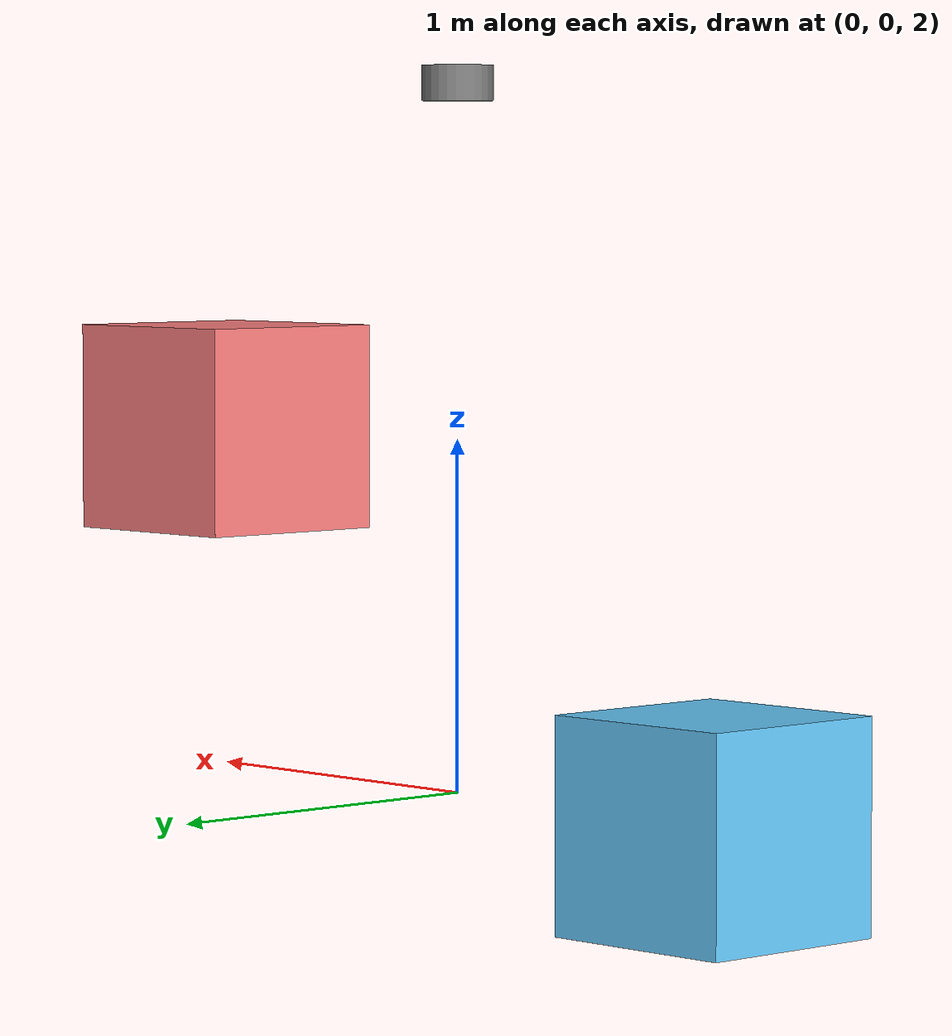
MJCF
<mujoco>
  <option gravity="0 0 -9.81" />
  <worldbody>
    <light diffuse="0.5 0.5 0.5" pos="0 0 5" dir="0 0 -1" />
    <body name="object_4" pos="0 0 -10">
      <geom type="plane" size="30 30 0.1" rgba="0.95 0.95 0.95 1" />
    </body>
    <body name="object_3" pos="0 0 4">
      <geom type="cylinder" size="0.1 0.05" rgba="0.5 0.5 0.5 1" />
    </body>
    <body name="object_1" pos="-1 0 2">
      <geom type="box" size="0.3 0.3 0.3" mass="2" rgba="0.4 0.8 1 1" />
      <joint type="slide" axis="0 0 1" name="object_1_joint" />
    </body>
    <body name="object_2" pos="1 0 3">
      <geom type="box" size="0.3 0.3 0.3" mass="4" rgba="1 0.5 0.5 1" />
      <joint type="slide" axis="0 0 1" name="object_2_joint" />
    </body>
  </worldbody>
<joint name="joint_object_1_object_3" type="revolute" body1="object_1" body2="object_3" /><joint name="joint_object_2_object_3" type="revolute" body1="object_2" body2="object_3" /><joint name="joint_object_3_object_4" type="revolute" body1="object_3" body2="object_4" /></mujoco>
